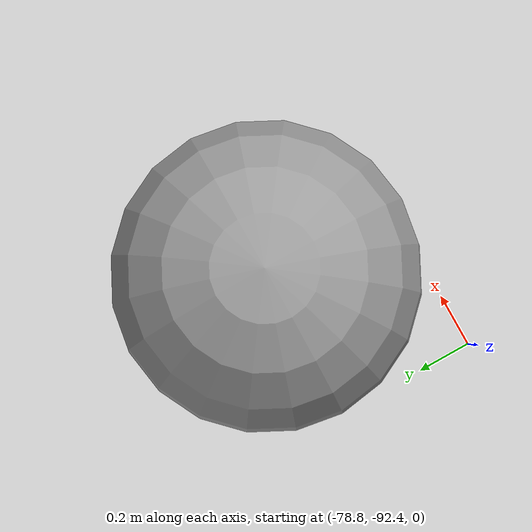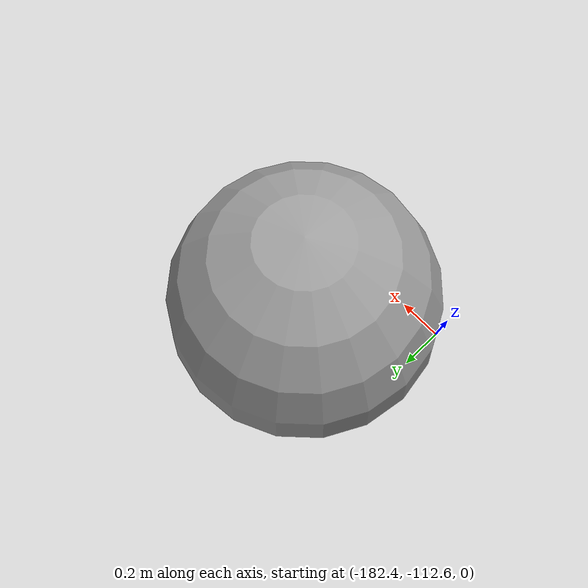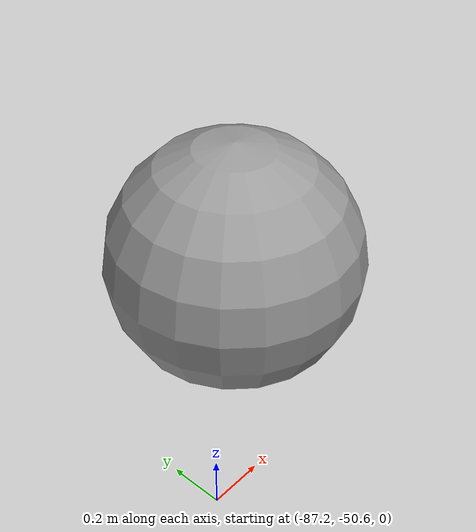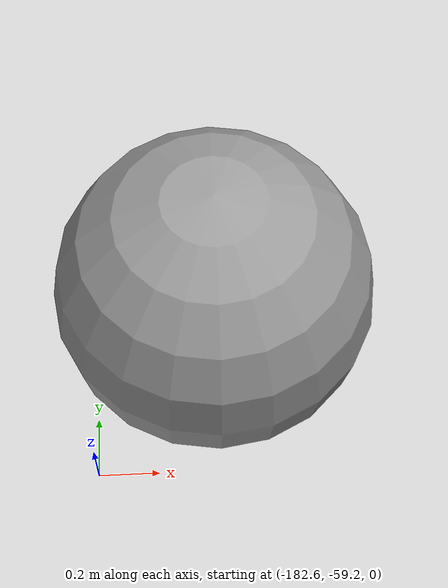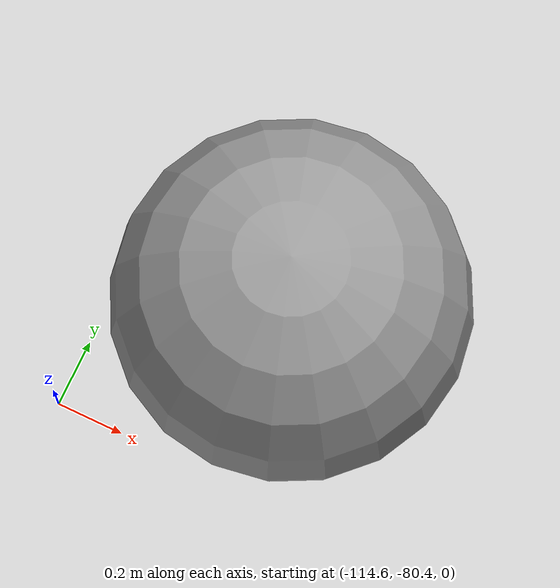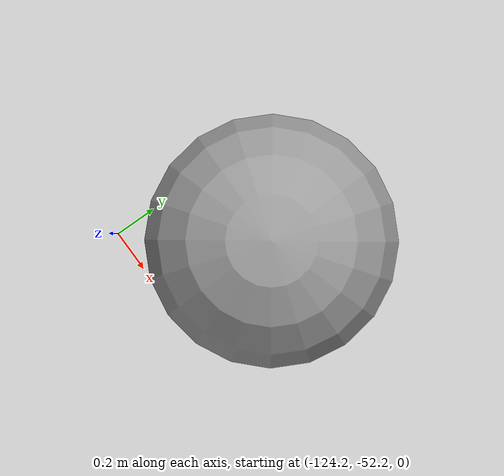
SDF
<sdf version="1.7">
 <world name="default">
  <light name="sun" type="directional">
   <pose>0 0 10 0 -0 0</pose>
   <diffuse>0.8 0.8 0.8 1</diffuse>
   <specular>0.2 0.2 0.2 1</specular>
   <attenuation>
    <range>1000</range>
    <constant>0.9</constant>
    <linear>0.01</linear>
    <quadratic>0.001</quadratic>
   </attenuation>
   <direction>-0.5 0.1 -0.9</direction>
   <spot><inner_angle>0</inner_angle><outer_angle>0</outer_angle><falloff>0</falloff></spot>
  </light>
  <model name="ground_plane">
   <static>1</static>
   <link name="link">
    <collision name="collision">
     <geometry><plane><normal>0 0 1</normal><size>100 100</size></plane></geometry>
     <surface>
      <contact><collide_bitmask>65535</collide_bitmask></contact>
      <friction><ode><mu>100</mu><mu2>50</mu2></ode></friction>
     </surface>
    </collision>
    <visual name="visual">
     <cast_shadows>0</cast_shadows>
     <geometry><plane><normal>0 0 1</normal><size>100 100</size></plane></geometry>
     <material>
      <script><uri>file://media/materials/scripts/gazebo.material</uri><name>Gazebo/Grey</name></script>
     </material>
    </visual>
   </link>
  </model>
  <gravity>0 0 -9.8</gravity>
  <magnetic_field>6e-06 2.3e-05 -4.2e-05</magnetic_field>
  <atmosphere type="adiabatic"/>
  <physics name="default_physics" default="0" type="ode"><max_step_size>0.005</max_step_size></physics>
  <scene><ambient>0.4 0.4 0.4 1</ambient><background>0.7 0.7 0.7 1</background><shadows>1</shadows></scene>
  <spherical_coordinates>
   <surface_model>EARTH_WGS84</surface_model>
   <latitude_deg>0</latitude_deg>
   <longitude_deg>0</longitude_deg>
   <elevation>0</elevation>
   <heading_deg>0</heading_deg>
  </spherical_coordinates>
  <model name="empty_airport">
   <link name="link_0">
    <inertial>
     <mass>1</mass>
     <inertia><ixx>0.1</ixx><ixy>0</ixy><ixz>0</ixz><iyy>0.1</iyy><iyz>0</iyz><izz>0.1</izz></inertia>
    </inertial>
    <pose>-69.8696 -31.1721 0 0 -0 0</pose>
    <visual name="visual">
     <geometry><sphere><radius>0.5</radius></sphere></geometry>
     <material>
      <lighting>1</lighting>
      <script><uri>file://media/materials/scripts/gazebo.material</uri><name>Gazebo/Grey</name></script>
      <shader type="pixel"/>
     </material>
    </visual>
    <collision name="collision">
     <geometry><sphere><radius>0.5</radius></sphere></geometry>
     <surface>
      <friction>
       <ode><mu>1</mu><mu2>1</mu2><fdir1>0 0 0</fdir1><slip1>0</slip1><slip2>0</slip2></ode>
       <torsional>
        <coefficient>1</coefficient>
        <patch_radius>0</patch_radius>
        <surface_radius>0</surface_radius>
        <use_patch_radius>1</use_patch_radius>
        <ode><slip>0</slip></ode>
       </torsional>
      </friction>
      <bounce><restitution_coefficient>0</restitution_coefficient><threshold>1e+06</threshold></bounce>
      <contact>
       <collide_without_contact>0</collide_without_contact>
       <collide_without_contact_bitmask>1</collide_without_contact_bitmask>
       <collide_bitmask>1</collide_bitmask>
       <ode>
        <soft_cfm>0</soft_cfm>
        <soft_erp>0.2</soft_erp>
        <kp>1e+13</kp>
        <kd>1</kd>
        <max_vel>0.01</max_vel>
        <min_depth>0</min_depth>
       </ode>
       <bullet>
        <split_impulse>1</split_impulse>
        <split_impulse_penetration_threshold>-0.01</split_impulse_penetration_threshold>
        <soft_cfm>0</soft_cfm>
        <soft_erp>0.2</soft_erp>
        <kp>1e+13</kp>
        <kd>1</kd>
       </bullet>
      </contact>
     </surface>
    </collision>
   </link>
   <link name="link_0_clone">
    <inertial>
     <mass>1</mass>
     <inertia><ixx>0.1</ixx><ixy>0</ixy><ixz>0</ixz><iyy>0.1</iyy><iyz>0</iyz><izz>0.1</izz></inertia>
    </inertial>
    <pose>-101.814 1.38634 0 0 -0 0</pose>
    <visual name="visual">
     <geometry><sphere><radius>0.5</radius></sphere></geometry>
     <material>
      <lighting>1</lighting>
      <script><uri>file://media/materials/scripts/gazebo.material</uri><name>Gazebo/Grey</name></script>
      <shader type="pixel"/>
     </material>
    </visual>
    <collision name="collision">
     <geometry><sphere><radius>0.5</radius></sphere></geometry>
     <surface>
      <friction>
       <ode><mu>1</mu><mu2>1</mu2><fdir1>0 0 0</fdir1><slip1>0</slip1><slip2>0</slip2></ode>
       <torsional>
        <coefficient>1</coefficient>
        <patch_radius>0</patch_radius>
        <surface_radius>0</surface_radius>
        <use_patch_radius>1</use_patch_radius>
        <ode><slip>0</slip></ode>
       </torsional>
      </friction>
      <bounce><restitution_coefficient>0</restitution_coefficient><threshold>1e+06</threshold></bounce>
      <contact>
       <collide_without_contact>0</collide_without_contact>
       <collide_without_contact_bitmask>1</collide_without_contact_bitmask>
       <collide_bitmask>1</collide_bitmask>
       <ode>
        <soft_cfm>0</soft_cfm>
        <soft_erp>0.2</soft_erp>
        <kp>1e+13</kp>
        <kd>1</kd>
        <max_vel>0.01</max_vel>
        <min_depth>0</min_depth>
       </ode>
       <bullet>
        <split_impulse>1</split_impulse>
        <split_impulse_penetration_threshold>-0.01</split_impulse_penetration_threshold>
        <soft_cfm>0</soft_cfm>
        <soft_erp>0.2</soft_erp>
        <kp>1e+13</kp>
        <kd>1</kd>
       </bullet>
      </contact>
     </surface>
    </collision>
   </link>
   <link name="link_0_clone_0">
    <inertial>
     <mass>1</mass>
     <inertia><ixx>0.1</ixx><ixy>0</ixy><ixz>0</ixz><iyy>0.1</iyy><iyz>0</iyz><izz>0.1</izz></inertia>
    </inertial>
    <pose>-81.4468 18.4912 0 0 -0 0</pose>
    <visual name="visual">
     <geometry><sphere><radius>0.5</radius></sphere></geometry>
     <material>
      <lighting>1</lighting>
      <script><uri>file://media/materials/scripts/gazebo.material</uri><name>Gazebo/Grey</name></script>
      <shader type="pixel"/>
     </material>
    </visual>
    <collision name="collision">
     <geometry><sphere><radius>0.5</radius></sphere></geometry>
     <surface>
      <friction>
       <ode><mu>1</mu><mu2>1</mu2><fdir1>0 0 0</fdir1><slip1>0</slip1><slip2>0</slip2></ode>
       <torsional>
        <coefficient>1</coefficient>
        <patch_radius>0</patch_radius>
        <surface_radius>0</surface_radius>
        <use_patch_radius>1</use_patch_radius>
        <ode><slip>0</slip></ode>
       </torsional>
      </friction>
      <bounce><restitution_coefficient>0</restitution_coefficient><threshold>1e+06</threshold></bounce>
      <contact>
       <collide_without_contact>0</collide_without_contact>
       <collide_without_contact_bitmask>1</collide_without_contact_bitmask>
       <collide_bitmask>1</collide_bitmask>
       <ode>
        <soft_cfm>0</soft_cfm>
        <soft_erp>0.2</soft_erp>
        <kp>1e+13</kp>
        <kd>1</kd>
        <max_vel>0.01</max_vel>
        <min_depth>0</min_depth>
       </ode>
       <bullet>
        <split_impulse>1</split_impulse>
        <split_impulse_penetration_threshold>-0.01</split_impulse_penetration_threshold>
        <soft_cfm>0</soft_cfm>
        <soft_erp>0.2</soft_erp>
        <kp>1e+13</kp>
        <kd>1</kd>
       </bullet>
      </contact>
     </surface>
    </collision>
   </link>
   <link name="link_0_clone_10">
    <inertial>
     <mass>1</mass>
     <inertia><ixx>0.1</ixx><ixy>0</ixy><ixz>0</ixz><iyy>0.1</iyy><iyz>0</iyz><izz>0.1</izz></inertia>
    </inertial>
    <pose>49.8745 -28.9393 0 0 -0 0</pose>
    <visual name="visual">
     <geometry><sphere><radius>0.5</radius></sphere></geometry>
     <material>
      <lighting>1</lighting>
      <script><uri>file://media/materials/scripts/gazebo.material</uri><name>Gazebo/Grey</name></script>
      <shader type="pixel"/>
     </material>
    </visual>
    <collision name="collision">
     <geometry><sphere><radius>0.5</radius></sphere></geometry>
     <surface>
      <friction>
       <ode><mu>1</mu><mu2>1</mu2><fdir1>0 0 0</fdir1><slip1>0</slip1><slip2>0</slip2></ode>
       <torsional>
        <coefficient>1</coefficient>
        <patch_radius>0</patch_radius>
        <surface_radius>0</surface_radius>
        <use_patch_radius>1</use_patch_radius>
        <ode><slip>0</slip></ode>
       </torsional>
      </friction>
      <bounce><restitution_coefficient>0</restitution_coefficient><threshold>1e+06</threshold></bounce>
      <contact>
       <collide_without_contact>0</collide_without_contact>
       <collide_without_contact_bitmask>1</collide_without_contact_bitmask>
       <collide_bitmask>1</collide_bitmask>
       <ode>
        <soft_cfm>0</soft_cfm>
        <soft_erp>0.2</soft_erp>
        <kp>1e+13</kp>
        <kd>1</kd>
        <max_vel>0.01</max_vel>
        <min_depth>0</min_depth>
       </ode>
       <bullet>
        <split_impulse>1</split_impulse>
        <split_impulse_penetration_threshold>-0.01</split_impulse_penetration_threshold>
        <soft_cfm>0</soft_cfm>
        <soft_erp>0.2</soft_erp>
        <kp>1e+13</kp>
        <kd>1</kd>
       </bullet>
      </contact>
     </surface>
    </collision>
   </link>
   <link name="link_0_clone_11">
    <inertial>
     <mass>1</mass>
     <inertia><ixx>0.1</ixx><ixy>0</ixy><ixz>0</ixz><iyy>0.1</iyy><iyz>0</iyz><izz>0.1</izz></inertia>
    </inertial>
    <pose>71.3841 30.8955 0 0 -0 0</pose>
    <visual name="visual">
     <geometry><sphere><radius>0.5</radius></sphere></geometry>
     <material>
      <lighting>1</lighting>
      <script><uri>file://media/materials/scripts/gazebo.material</uri><name>Gazebo/Grey</name></script>
      <shader type="pixel"/>
     </material>
    </visual>
    <collision name="collision">
     <geometry><sphere><radius>0.5</radius></sphere></geometry>
     <surface>
      <friction>
       <ode><mu>1</mu><mu2>1</mu2><fdir1>0 0 0</fdir1><slip1>0</slip1><slip2>0</slip2></ode>
       <torsional>
        <coefficient>1</coefficient>
        <patch_radius>0</patch_radius>
        <surface_radius>0</surface_radius>
        <use_patch_radius>1</use_patch_radius>
        <ode><slip>0</slip></ode>
       </torsional>
      </friction>
      <bounce><restitution_coefficient>0</restitution_coefficient><threshold>1e+06</threshold></bounce>
      <contact>
       <collide_without_contact>0</collide_without_contact>
       <collide_without_contact_bitmask>1</collide_without_contact_bitmask>
       <collide_bitmask>1</collide_bitmask>
       <ode>
        <soft_cfm>0</soft_cfm>
        <soft_erp>0.2</soft_erp>
        <kp>1e+13</kp>
        <kd>1</kd>
        <max_vel>0.01</max_vel>
        <min_depth>0</min_depth>
       </ode>
       <bullet>
        <split_impulse>1</split_impulse>
        <split_impulse_penetration_threshold>-0.01</split_impulse_penetration_threshold>
        <soft_cfm>0</soft_cfm>
        <soft_erp>0.2</soft_erp>
        <kp>1e+13</kp>
        <kd>1</kd>
       </bullet>
      </contact>
     </surface>
    </collision>
   </link>
   <link name="link_0_clone_12">
    <inertial>
     <mass>1</mass>
     <inertia><ixx>0.1</ixx><ixy>0</ixy><ixz>0</ixz><iyy>0.1</iyy><iyz>0</iyz><izz>0.1</izz></inertia>
    </inertial>
    <pose>79.7507 -10.8173 0 0 -0 0</pose>
    <visual name="visual">
     <geometry><sphere><radius>0.5</radius></sphere></geometry>
     <material>
      <lighting>1</lighting>
      <script><uri>file://media/materials/scripts/gazebo.material</uri><name>Gazebo/Grey</name></script>
      <shader type="pixel"/>
     </material>
    </visual>
    <collision name="collision">
     <geometry><sphere><radius>0.5</radius></sphere></geometry>
     <surface>
      <friction>
       <ode><mu>1</mu><mu2>1</mu2><fdir1>0 0 0</fdir1><slip1>0</slip1><slip2>0</slip2></ode>
       <torsional>
        <coefficient>1</coefficient>
        <patch_radius>0</patch_radius>
        <surface_radius>0</surface_radius>
        <use_patch_radius>1</use_patch_radius>
        <ode><slip>0</slip></ode>
       </torsional>
      </friction>
      <bounce><restitution_coefficient>0</restitution_coefficient><threshold>1e+06</threshold></bounce>
      <contact>
       <collide_without_contact>0</collide_without_contact>
       <collide_without_contact_bitmask>1</collide_without_contact_bitmask>
       <collide_bitmask>1</collide_bitmask>
       <ode>
        <soft_cfm>0</soft_cfm>
        <soft_erp>0.2</soft_erp>
        <kp>1e+13</kp>
        <kd>1</kd>
        <max_vel>0.01</max_vel>
        <min_depth>0</min_depth>
       </ode>
       <bullet>
        <split_impulse>1</split_impulse>
        <split_impulse_penetration_threshold>-0.01</split_impulse_penetration_threshold>
        <soft_cfm>0</soft_cfm>
        <soft_erp>0.2</soft_erp>
        <kp>1e+13</kp>
        <kd>1</kd>
       </bullet>
      </contact>
     </surface>
    </collision>
   </link>
   <link name="link_0_clone_2">
    <inertial>
     <mass>1</mass>
     <inertia><ixx>0.1</ixx><ixy>0</ixy><ixz>0</ixz><iyy>0.1</iyy><iyz>0</iyz><izz>0.1</izz></inertia>
    </inertial>
    <pose>-24.0006 -31.0897 0 0 -0 0</pose>
    <visual name="visual">
     <geometry><sphere><radius>0.5</radius></sphere></geometry>
     <material>
      <lighting>1</lighting>
      <script><uri>file://media/materials/scripts/gazebo.material</uri><name>Gazebo/Grey</name></script>
      <shader type="pixel"/>
     </material>
    </visual>
    <collision name="collision">
     <geometry><sphere><radius>0.5</radius></sphere></geometry>
     <surface>
      <friction>
       <ode><mu>1</mu><mu2>1</mu2><fdir1>0 0 0</fdir1><slip1>0</slip1><slip2>0</slip2></ode>
       <torsional>
        <coefficient>1</coefficient>
        <patch_radius>0</patch_radius>
        <surface_radius>0</surface_radius>
        <use_patch_radius>1</use_patch_radius>
        <ode><slip>0</slip></ode>
       </torsional>
      </friction>
      <bounce><restitution_coefficient>0</restitution_coefficient><threshold>1e+06</threshold></bounce>
      <contact>
       <collide_without_contact>0</collide_without_contact>
       <collide_without_contact_bitmask>1</collide_without_contact_bitmask>
       <collide_bitmask>1</collide_bitmask>
       <ode>
        <soft_cfm>0</soft_cfm>
        <soft_erp>0.2</soft_erp>
        <kp>1e+13</kp>
        <kd>1</kd>
        <max_vel>0.01</max_vel>
        <min_depth>0</min_depth>
       </ode>
       <bullet>
        <split_impulse>1</split_impulse>
        <split_impulse_penetration_threshold>-0.01</split_impulse_penetration_threshold>
        <soft_cfm>0</soft_cfm>
        <soft_erp>0.2</soft_erp>
        <kp>1e+13</kp>
        <kd>1</kd>
       </bullet>
      </contact>
     </surface>
    </collision>
   </link>
   <link name="link_0_clone_4">
    <inertial>
     <mass>1</mass>
     <inertia><ixx>0.1</ixx><ixy>0</ixy><ixz>0</ixz><iyy>0.1</iyy><iyz>0</iyz><izz>0.1</izz></inertia>
    </inertial>
    <pose>-24.204 22.2621 0 0 -0 0</pose>
    <visual name="visual">
     <geometry><sphere><radius>0.5</radius></sphere></geometry>
     <material>
      <lighting>1</lighting>
      <script><uri>file://media/materials/scripts/gazebo.material</uri><name>Gazebo/Grey</name></script>
      <shader type="pixel"/>
     </material>
    </visual>
    <collision name="collision">
     <geometry><sphere><radius>0.5</radius></sphere></geometry>
     <surface>
      <friction>
       <ode><mu>1</mu><mu2>1</mu2><fdir1>0 0 0</fdir1><slip1>0</slip1><slip2>0</slip2></ode>
       <torsional>
        <coefficient>1</coefficient>
        <patch_radius>0</patch_radius>
        <surface_radius>0</surface_radius>
        <use_patch_radius>1</use_patch_radius>
        <ode><slip>0</slip></ode>
       </torsional>
      </friction>
      <bounce><restitution_coefficient>0</restitution_coefficient><threshold>1e+06</threshold></bounce>
      <contact>
       <collide_without_contact>0</collide_without_contact>
       <collide_without_contact_bitmask>1</collide_without_contact_bitmask>
       <collide_bitmask>1</collide_bitmask>
       <ode>
        <soft_cfm>0</soft_cfm>
        <soft_erp>0.2</soft_erp>
        <kp>1e+13</kp>
        <kd>1</kd>
        <max_vel>0.01</max_vel>
        <min_depth>0</min_depth>
       </ode>
       <bullet>
        <split_impulse>1</split_impulse>
        <split_impulse_penetration_threshold>-0.01</split_impulse_penetration_threshold>
        <soft_cfm>0</soft_cfm>
        <soft_erp>0.2</soft_erp>
        <kp>1e+13</kp>
        <kd>1</kd>
       </bullet>
      </contact>
     </surface>
    </collision>
   </link>
   <link name="link_0_clone_5">
    <inertial>
     <mass>1</mass>
     <inertia><ixx>0.1</ixx><ixy>0</ixy><ixz>0</ixz><iyy>0.1</iyy><iyz>0</iyz><izz>0.1</izz></inertia>
    </inertial>
    <pose>7.35269 27.5623 0 0 -0 0</pose>
    <visual name="visual">
     <geometry><sphere><radius>0.5</radius></sphere></geometry>
     <material>
      <lighting>1</lighting>
      <script><uri>file://media/materials/scripts/gazebo.material</uri><name>Gazebo/Grey</name></script>
      <shader type="pixel"/>
     </material>
    </visual>
    <collision name="collision">
     <geometry><sphere><radius>0.5</radius></sphere></geometry>
     <surface>
      <friction>
       <ode><mu>1</mu><mu2>1</mu2><fdir1>0 0 0</fdir1><slip1>0</slip1><slip2>0</slip2></ode>
       <torsional>
        <coefficient>1</coefficient>
        <patch_radius>0</patch_radius>
        <surface_radius>0</surface_radius>
        <use_patch_radius>1</use_patch_radius>
        <ode><slip>0</slip></ode>
       </torsional>
      </friction>
      <bounce><restitution_coefficient>0</restitution_coefficient><threshold>1e+06</threshold></bounce>
      <contact>
       <collide_without_contact>0</collide_without_contact>
       <collide_without_contact_bitmask>1</collide_without_contact_bitmask>
       <collide_bitmask>1</collide_bitmask>
       <ode>
        <soft_cfm>0</soft_cfm>
        <soft_erp>0.2</soft_erp>
        <kp>1e+13</kp>
        <kd>1</kd>
        <max_vel>0.01</max_vel>
        <min_depth>0</min_depth>
       </ode>
       <bullet>
        <split_impulse>1</split_impulse>
        <split_impulse_penetration_threshold>-0.01</split_impulse_penetration_threshold>
        <soft_cfm>0</soft_cfm>
        <soft_erp>0.2</soft_erp>
        <kp>1e+13</kp>
        <kd>1</kd>
       </bullet>
      </contact>
     </surface>
    </collision>
   </link>
   <link name="link_0_clone_6">
    <inertial>
     <mass>1</mass>
     <inertia><ixx>0.1</ixx><ixy>0</ixy><ixz>0</ixz><iyy>0.1</iyy><iyz>0</iyz><izz>0.1</izz></inertia>
    </inertial>
    <pose>-4.91318 -5.61674 0 0 -0 0</pose>
    <visual name="visual">
     <geometry><sphere><radius>0.5</radius></sphere></geometry>
     <material>
      <lighting>1</lighting>
      <script><uri>file://media/materials/scripts/gazebo.material</uri><name>Gazebo/Grey</name></script>
      <shader type="pixel"/>
     </material>
    </visual>
    <collision name="collision">
     <geometry><sphere><radius>0.5</radius></sphere></geometry>
     <surface>
      <friction>
       <ode><mu>1</mu><mu2>1</mu2><fdir1>0 0 0</fdir1><slip1>0</slip1><slip2>0</slip2></ode>
       <torsional>
        <coefficient>1</coefficient>
        <patch_radius>0</patch_radius>
        <surface_radius>0</surface_radius>
        <use_patch_radius>1</use_patch_radius>
        <ode><slip>0</slip></ode>
       </torsional>
      </friction>
      <bounce><restitution_coefficient>0</restitution_coefficient><threshold>1e+06</threshold></bounce>
      <contact>
       <collide_without_contact>0</collide_without_contact>
       <collide_without_contact_bitmask>1</collide_without_contact_bitmask>
       <collide_bitmask>1</collide_bitmask>
       <ode>
        <soft_cfm>0</soft_cfm>
        <soft_erp>0.2</soft_erp>
        <kp>1e+13</kp>
        <kd>1</kd>
        <max_vel>0.01</max_vel>
        <min_depth>0</min_depth>
       </ode>
       <bullet>
        <split_impulse>1</split_impulse>
        <split_impulse_penetration_threshold>-0.01</split_impulse_penetration_threshold>
        <soft_cfm>0</soft_cfm>
        <soft_erp>0.2</soft_erp>
        <kp>1e+13</kp>
        <kd>1</kd>
       </bullet>
      </contact>
     </surface>
    </collision>
   </link>
   <link name="link_0_clone_7">
    <inertial>
     <mass>1</mass>
     <inertia><ixx>0.1</ixx><ixy>0</ixy><ixz>0</ixz><iyy>0.1</iyy><iyz>0</iyz><izz>0.1</izz></inertia>
    </inertial>
    <pose>19.7345 -23.4799 0 0 -0 0</pose>
    <visual name="visual">
     <geometry><sphere><radius>0.5</radius></sphere></geometry>
     <material>
      <lighting>1</lighting>
      <script><uri>file://media/materials/scripts/gazebo.material</uri><name>Gazebo/Grey</name></script>
      <shader type="pixel"/>
     </material>
    </visual>
    <collision name="collision">
     <geometry><sphere><radius>0.5</radius></sphere></geometry>
     <surface>
      <friction>
       <ode><mu>1</mu><mu2>1</mu2><fdir1>0 0 0</fdir1><slip1>0</slip1><slip2>0</slip2></ode>
       <torsional>
        <coefficient>1</coefficient>
        <patch_radius>0</patch_radius>
        <surface_radius>0</surface_radius>
        <use_patch_radius>1</use_patch_radius>
        <ode><slip>0</slip></ode>
       </torsional>
      </friction>
      <bounce><restitution_coefficient>0</restitution_coefficient><threshold>1e+06</threshold></bounce>
      <contact>
       <collide_without_contact>0</collide_without_contact>
       <collide_without_contact_bitmask>1</collide_without_contact_bitmask>
       <collide_bitmask>1</collide_bitmask>
       <ode>
        <soft_cfm>0</soft_cfm>
        <soft_erp>0.2</soft_erp>
        <kp>1e+13</kp>
        <kd>1</kd>
        <max_vel>0.01</max_vel>
        <min_depth>0</min_depth>
       </ode>
       <bullet>
        <split_impulse>1</split_impulse>
        <split_impulse_penetration_threshold>-0.01</split_impulse_penetration_threshold>
        <soft_cfm>0</soft_cfm>
        <soft_erp>0.2</soft_erp>
        <kp>1e+13</kp>
        <kd>1</kd>
       </bullet>
      </contact>
     </surface>
    </collision>
   </link>
   <link name="link_0_clone_8">
    <inertial>
     <mass>1</mass>
     <inertia><ixx>0.1</ixx><ixy>0</ixy><ixz>0</ixz><iyy>0.1</iyy><iyz>0</iyz><izz>0.1</izz></inertia>
    </inertial>
    <pose>34.2326 29.4085 0 0 -0 0</pose>
    <visual name="visual">
     <geometry><sphere><radius>0.5</radius></sphere></geometry>
     <material>
      <lighting>1</lighting>
      <script><uri>file://media/materials/scripts/gazebo.material</uri><name>Gazebo/Grey</name></script>
      <shader type="pixel"/>
     </material>
    </visual>
    <collision name="collision">
     <geometry><sphere><radius>0.5</radius></sphere></geometry>
     <surface>
      <friction>
       <ode><mu>1</mu><mu2>1</mu2><fdir1>0 0 0</fdir1><slip1>0</slip1><slip2>0</slip2></ode>
       <torsional>
        <coefficient>1</coefficient>
        <patch_radius>0</patch_radius>
        <surface_radius>0</surface_radius>
        <use_patch_radius>1</use_patch_radius>
        <ode><slip>0</slip></ode>
       </torsional>
      </friction>
      <bounce><restitution_coefficient>0</restitution_coefficient><threshold>1e+06</threshold></bounce>
      <contact>
       <collide_without_contact>0</collide_without_contact>
       <collide_without_contact_bitmask>1</collide_without_contact_bitmask>
       <collide_bitmask>1</collide_bitmask>
       <ode>
        <soft_cfm>0</soft_cfm>
        <soft_erp>0.2</soft_erp>
        <kp>1e+13</kp>
        <kd>1</kd>
        <max_vel>0.01</max_vel>
        <min_depth>0</min_depth>
       </ode>
       <bullet>
        <split_impulse>1</split_impulse>
        <split_impulse_penetration_threshold>-0.01</split_impulse_penetration_threshold>
        <soft_cfm>0</soft_cfm>
        <soft_erp>0.2</soft_erp>
        <kp>1e+13</kp>
        <kd>1</kd>
       </bullet>
      </contact>
     </surface>
    </collision>
   </link>
   <link name="link_0_clone_9">
    <inertial>
     <mass>1</mass>
     <inertia><ixx>0.1</ixx><ixy>0</ixy><ixz>0</ixz><iyy>0.1</iyy><iyz>0</iyz><izz>0.1</izz></inertia>
    </inertial>
    <pose>43.9204 1.10894 0 0 -0 0</pose>
    <visual name="visual">
     <geometry><sphere><radius>0.5</radius></sphere></geometry>
     <material>
      <lighting>1</lighting>
      <script><uri>file://media/materials/scripts/gazebo.material</uri><name>Gazebo/Grey</name></script>
      <shader type="pixel"/>
     </material>
    </visual>
    <collision name="collision">
     <geometry><sphere><radius>0.5</radius></sphere></geometry>
     <surface>
      <friction>
       <ode><mu>1</mu><mu2>1</mu2><fdir1>0 0 0</fdir1><slip1>0</slip1><slip2>0</slip2></ode>
       <torsional>
        <coefficient>1</coefficient>
        <patch_radius>0</patch_radius>
        <surface_radius>0</surface_radius>
        <use_patch_radius>1</use_patch_radius>
        <ode><slip>0</slip></ode>
       </torsional>
      </friction>
      <bounce><restitution_coefficient>0</restitution_coefficient><threshold>1e+06</threshold></bounce>
      <contact>
       <collide_without_contact>0</collide_without_contact>
       <collide_without_contact_bitmask>1</collide_without_contact_bitmask>
       <collide_bitmask>1</collide_bitmask>
       <ode>
        <soft_cfm>0</soft_cfm>
        <soft_erp>0.2</soft_erp>
        <kp>1e+13</kp>
        <kd>1</kd>
        <max_vel>0.01</max_vel>
        <min_depth>0</min_depth>
       </ode>
       <bullet>
        <split_impulse>1</split_impulse>
        <split_impulse_penetration_threshold>-0.01</split_impulse_penetration_threshold>
        <soft_cfm>0</soft_cfm>
        <soft_erp>0.2</soft_erp>
        <kp>1e+13</kp>
        <kd>1</kd>
       </bullet>
      </contact>
     </surface>
    </collision>
   </link>
   <static>0</static>
   <pose>-157.996 -81.0523 0.5 0 -0 0</pose>
  </model>
 </world>
</sdf>
